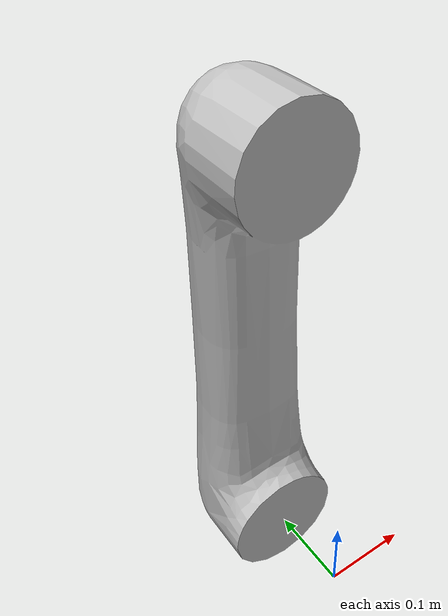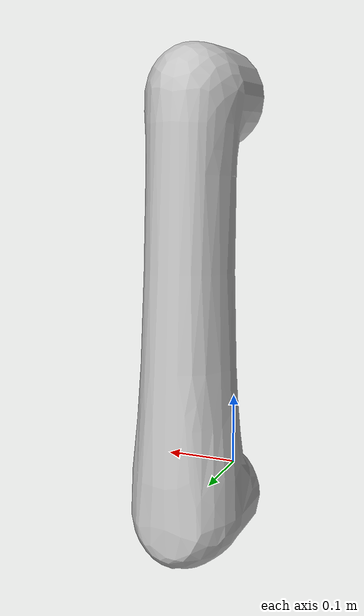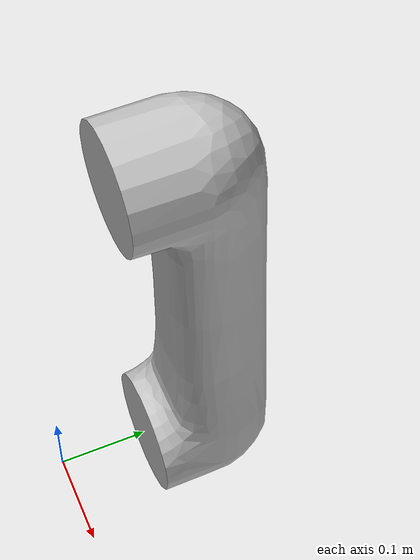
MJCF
<mujoco model="J2">
  <default>
    <default class="visual">
      <geom group="2" type="mesh" contype="0" conaffinity="0"/>
    </default>
    <default class="collision">
      <geom group="3" type="mesh"/>
    </default>
  </default>
  <asset>
    <material name="material_m2_0" specular="0.20000000000000004" shininess="1.0" rgba="0.75294118 0.75294118 0.75294118 1.0"/>
    <mesh file="J2.obj"/>
  </asset>
  <worldbody>
    <body name="J2">
      <geom material="material_m2_0" mesh="J2" class="visual"/>
      <geom mesh="J2" class="collision"/>
    </body>
  </worldbody>
</mujoco>
